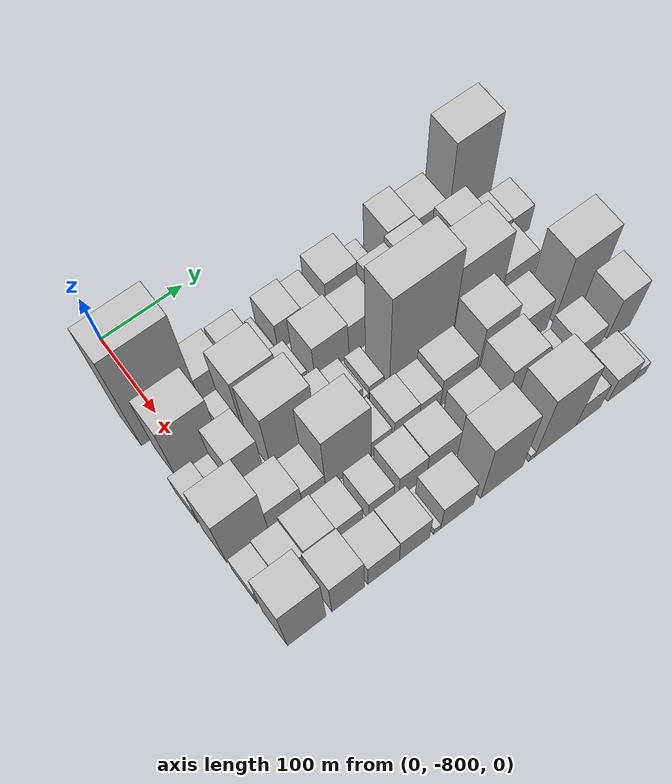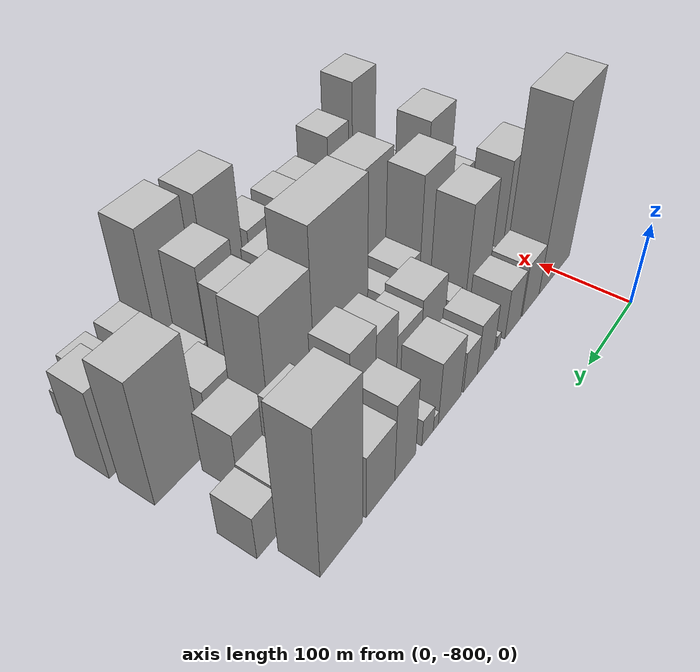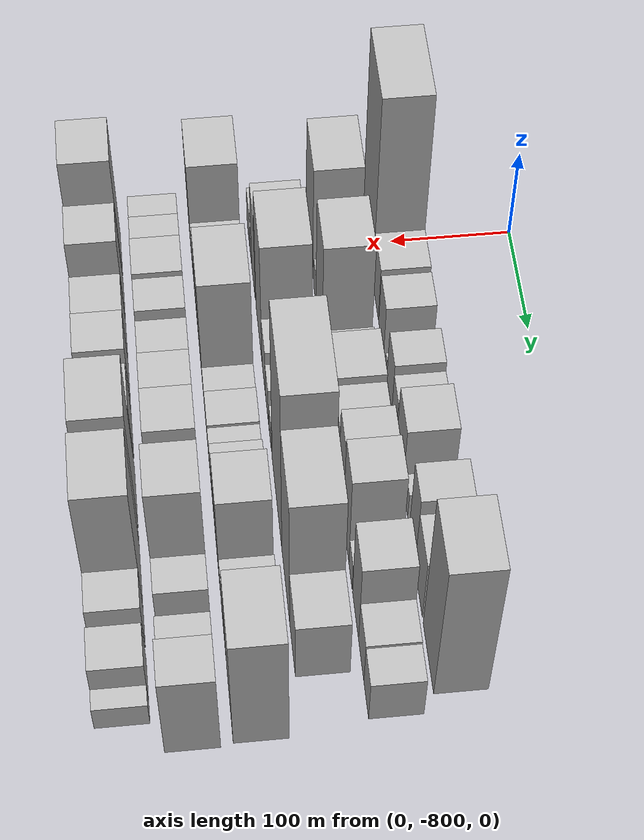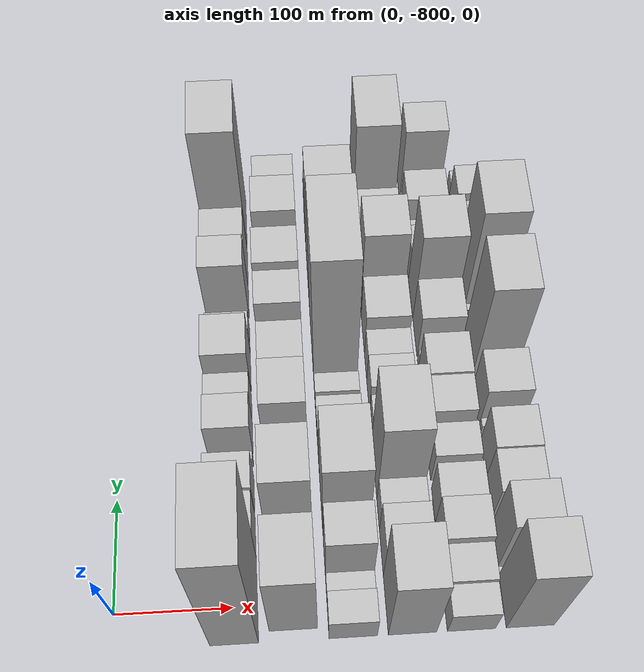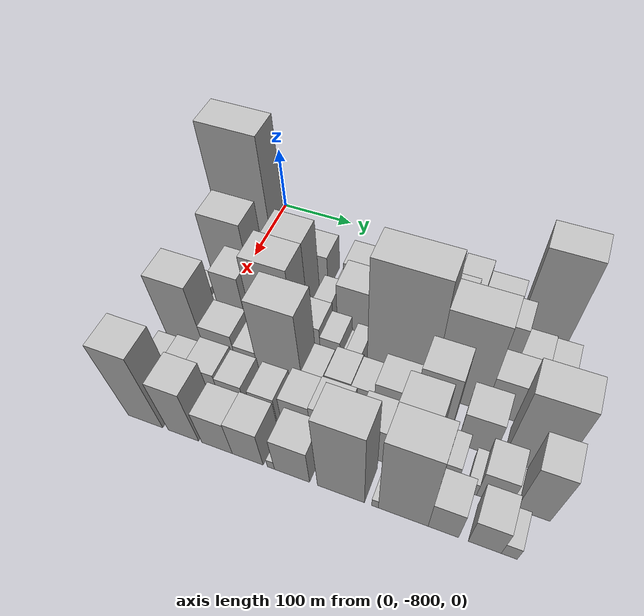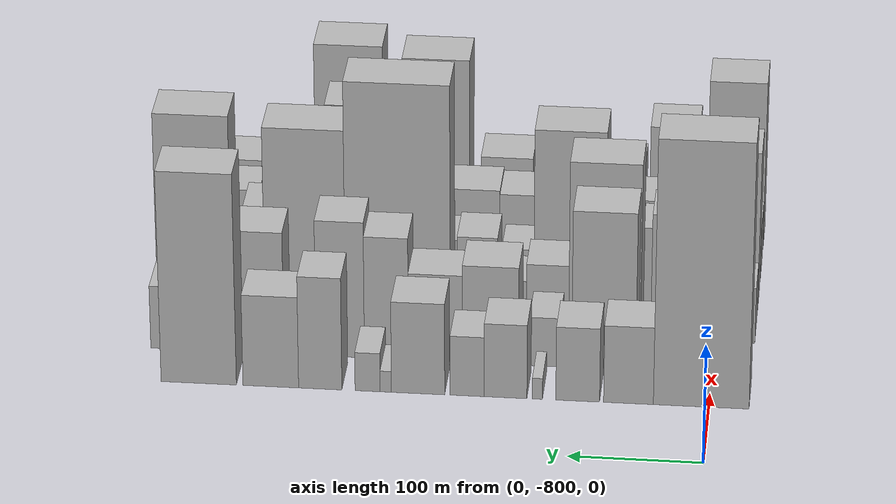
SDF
<sdf version="1.6">
 <world name="default">
  <model name="building_1">
   <static>1</static>
   <pose>100.0000 -794.2020 0 0.000000 0.000000 0.000000</pose>
   <link name="link">
    <pose>0 0 112.50 0 0 0</pose>
    <collision name="collision"><geometry><box><size>40.0000 71.5960 225.0000</size></box></geometry></collision>
    <visual name="visual">
     <cast_shadows>0</cast_shadows>
     <geometry><box><size>40.0000 71.5960 225.0000</size></box></geometry>
     <material>
      <script>
       <uri>model://HANNAS_wall/materials/scripts</uri>
       <uri>model://HANNAS_wall/materials/textures</uri>
       <name>vrc/HANNAS_wall</name>
      </script>
     </material>
    </visual>
   </link>
  </model>
  <model name="building_2">
   <static>1</static>
   <pose>100.0000 -739.7507 0 0.000000 0.000000 0.000000</pose>
   <link name="link">
    <pose>0 0 33.00 0 0 0</pose>
    <collision name="collision"><geometry><box><size>40.0000 37.3066 66.0000</size></box></geometry></collision>
    <visual name="visual">
     <cast_shadows>0</cast_shadows>
     <geometry><box><size>40.0000 37.3066 66.0000</size></box></geometry>
     <material>
      <script>
       <uri>model://HANNAS_wall/materials/scripts</uri>
       <uri>model://HANNAS_wall/materials/textures</uri>
       <name>vrc/HANNAS_wall</name>
      </script>
     </material>
    </visual>
   </link>
  </model>
  <model name="building_3">
   <static>1</static>
   <pose>100.0000 -701.6591 0 0.000000 0.000000 0.000000</pose>
   <link name="link">
    <pose>0 0 31.50 0 0 0</pose>
    <collision name="collision"><geometry><box><size>40.0000 32.8764 63.0000</size></box></geometry></collision>
    <visual name="visual">
     <cast_shadows>0</cast_shadows>
     <geometry><box><size>40.0000 32.8764 63.0000</size></box></geometry>
     <material>
      <script>
       <uri>model://HANNAS_wall/materials/scripts</uri>
       <uri>model://HANNAS_wall/materials/textures</uri>
       <name>vrc/HANNAS_wall</name>
      </script>
     </material>
    </visual>
   </link>
  </model>
  <model name="building_4">
   <static>1</static>
   <pose>100.0000 -671.3592 0 0.000000 0.000000 0.000000</pose>
   <link name="link">
    <pose>0 0 9.00 0 0 0</pose>
    <collision name="collision"><geometry><box><size>40.0000 7.7235 18.0000</size></box></geometry></collision>
    <visual name="visual">
     <cast_shadows>0</cast_shadows>
     <geometry><box><size>40.0000 7.7235 18.0000</size></box></geometry>
     <material>
      <script>
       <uri>model://HANNAS_wall/materials/scripts</uri>
       <uri>model://HANNAS_wall/materials/textures</uri>
       <name>vrc/HANNAS_wall</name>
      </script>
     </material>
    </visual>
   </link>
  </model>
  <model name="building_5">
   <static>1</static>
   <pose>100.0000 -647.3907 0 0.000000 0.000000 0.000000</pose>
   <link name="link">
    <pose>0 0 31.50 0 0 0</pose>
    <collision name="collision"><geometry><box><size>40.0000 32.2135 63.0000</size></box></geometry></collision>
    <visual name="visual">
     <cast_shadows>0</cast_shadows>
     <geometry><box><size>40.0000 32.2135 63.0000</size></box></geometry>
     <material>
      <script>
       <uri>model://HANNAS_wall/materials/scripts</uri>
       <uri>model://HANNAS_wall/materials/textures</uri>
       <name>vrc/HANNAS_wall</name>
      </script>
     </material>
    </visual>
   </link>
  </model>
  <model name="building_6">
   <static>1</static>
   <pose>100.0000 -618.4481 0 0.000000 0.000000 0.000000</pose>
   <link name="link">
    <pose>0 0 25.50 0 0 0</pose>
    <collision name="collision"><geometry><box><size>40.0000 25.6717 51.0000</size></box></geometry></collision>
    <visual name="visual">
     <cast_shadows>0</cast_shadows>
     <geometry><box><size>40.0000 25.6717 51.0000</size></box></geometry>
     <material>
      <script>
       <uri>model://HANNAS_wall/materials/scripts</uri>
       <uri>model://HANNAS_wall/materials/textures</uri>
       <name>vrc/HANNAS_wall</name>
      </script>
     </material>
    </visual>
   </link>
  </model>
  <model name="building_7">
   <static>1</static>
   <pose>100.0000 -581.4891 0 0.000000 0.000000 0.000000</pose>
   <link name="link">
    <pose>0 0 39.00 0 0 0</pose>
    <collision name="collision"><geometry><box><size>40.0000 40.2463 78.0000</size></box></geometry></collision>
    <visual name="visual">
     <cast_shadows>0</cast_shadows>
     <geometry><box><size>40.0000 40.2463 78.0000</size></box></geometry>
     <material>
      <script>
       <uri>model://HANNAS_wall/materials/scripts</uri>
       <uri>model://HANNAS_wall/materials/textures</uri>
       <name>vrc/HANNAS_wall</name>
      </script>
     </material>
    </visual>
   </link>
  </model>
  <model name="building_8">
   <static>1</static>
   <pose>100.0000 -557.1574 0 0.000000 0.000000 0.000000</pose>
   <link name="link">
    <pose>0 0 9.00 0 0 0</pose>
    <collision name="collision"><geometry><box><size>40.0000 8.4170 18.0000</size></box></geometry></collision>
    <visual name="visual">
     <cast_shadows>0</cast_shadows>
     <geometry><box><size>40.0000 8.4170 18.0000</size></box></geometry>
     <material>
      <script>
       <uri>model://HANNAS_wall/materials/scripts</uri>
       <uri>model://HANNAS_wall/materials/textures</uri>
       <name>vrc/HANNAS_wall</name>
      </script>
     </material>
    </visual>
   </link>
  </model>
  <model name="building_9">
   <static>1</static>
   <pose>100.0000 -543.4780 0 0.000000 0.000000 0.000000</pose>
   <link name="link">
    <pose>0 0 16.50 0 0 0</pose>
    <collision name="collision"><geometry><box><size>40.0000 18.9418 33.0000</size></box></geometry></collision>
    <visual name="visual">
     <cast_shadows>0</cast_shadows>
     <geometry><box><size>40.0000 18.9418 33.0000</size></box></geometry>
     <material>
      <script>
       <uri>model://HANNAS_wall/materials/scripts</uri>
       <uri>model://HANNAS_wall/materials/textures</uri>
       <name>vrc/HANNAS_wall</name>
      </script>
     </material>
    </visual>
   </link>
  </model>
  <model name="building_10">
   <static>1</static>
   <pose>100.0000 -507.6493 0 0.000000 0.000000 0.000000</pose>
   <link name="link">
    <pose>0 0 48.00 0 0 0</pose>
    <collision name="collision"><geometry><box><size>40.0000 32.7156 96.0000</size></box></geometry></collision>
    <visual name="visual">
     <cast_shadows>0</cast_shadows>
     <geometry><box><size>40.0000 32.7156 96.0000</size></box></geometry>
     <material>
      <script>
       <uri>model://HANNAS_wall/materials/scripts</uri>
       <uri>model://HANNAS_wall/materials/textures</uri>
       <name>vrc/HANNAS_wall</name>
      </script>
     </material>
    </visual>
   </link>
  </model>
  <model name="building_11">
   <static>1</static>
   <pose>100.0000 -470.2240 0 0.000000 0.000000 0.000000</pose>
   <link name="link">
    <pose>0 0 39.00 0 0 0</pose>
    <collision name="collision"><geometry><box><size>40.0000 42.1351 78.0000</size></box></geometry></collision>
    <visual name="visual">
     <cast_shadows>0</cast_shadows>
     <geometry><box><size>40.0000 42.1351 78.0000</size></box></geometry>
     <material>
      <script>
       <uri>model://HANNAS_wall/materials/scripts</uri>
       <uri>model://HANNAS_wall/materials/textures</uri>
       <name>vrc/HANNAS_wall</name>
      </script>
     </material>
    </visual>
   </link>
  </model>
  <model name="building_12">
   <static>1</static>
   <pose>100.0000 -415.5704 0 0.000000 0.000000 0.000000</pose>
   <link name="link">
    <pose>0 0 90.00 0 0 0</pose>
    <collision name="collision"><geometry><box><size>40.0000 57.1721 180.0000</size></box></geometry></collision>
    <visual name="visual">
     <cast_shadows>0</cast_shadows>
     <geometry><box><size>40.0000 57.1721 180.0000</size></box></geometry>
     <material>
      <script>
       <uri>model://HANNAS_wall/materials/scripts</uri>
       <uri>model://HANNAS_wall/materials/textures</uri>
       <name>vrc/HANNAS_wall</name>
      </script>
     </material>
    </visual>
   </link>
  </model>
  <model name="building_49">
   <static>1</static>
   <pose>149.0000 -794.2120 0 0.000000 0.000000 0.000000</pose>
   <link name="link">
    <pose>0 0 69.00 0 0 0</pose>
    <collision name="collision"><geometry><box><size>40.0000 53.5760 138.0000</size></box></geometry></collision>
    <visual name="visual">
     <cast_shadows>0</cast_shadows>
     <geometry><box><size>40.0000 53.5760 138.0000</size></box></geometry>
     <material>
      <script>
       <uri>model://HANNAS_wall/materials/scripts</uri>
       <uri>model://HANNAS_wall/materials/textures</uri>
       <name>vrc/HANNAS_wall</name>
      </script>
     </material>
    </visual>
   </link>
  </model>
  <model name="building_50">
   <static>1</static>
   <pose>149.0000 -751.2019 0 0.000000 0.000000 0.000000</pose>
   <link name="link">
    <pose>0 0 18.00 0 0 0</pose>
    <collision name="collision"><geometry><box><size>40.0000 18.4443 36.0000</size></box></geometry></collision>
    <visual name="visual">
     <cast_shadows>0</cast_shadows>
     <geometry><box><size>40.0000 18.4443 36.0000</size></box></geometry>
     <material>
      <script>
       <uri>model://HANNAS_wall/materials/scripts</uri>
       <uri>model://HANNAS_wall/materials/textures</uri>
       <name>vrc/HANNAS_wall</name>
      </script>
     </material>
    </visual>
   </link>
  </model>
  <model name="building_51">
   <static>1</static>
   <pose>149.0000 -717.7281 0 0.000000 0.000000 0.000000</pose>
   <link name="link">
    <pose>0 0 67.50 0 0 0</pose>
    <collision name="collision"><geometry><box><size>40.0000 48.5032 135.0000</size></box></geometry></collision>
    <visual name="visual">
     <cast_shadows>0</cast_shadows>
     <geometry><box><size>40.0000 48.5032 135.0000</size></box></geometry>
     <material>
      <script>
       <uri>model://HANNAS_wall/materials/scripts</uri>
       <uri>model://HANNAS_wall/materials/textures</uri>
       <name>vrc/HANNAS_wall</name>
      </script>
     </material>
    </visual>
   </link>
  </model>
  <model name="building_52">
   <static>1</static>
   <pose>149.0000 -672.8310 0 0.000000 0.000000 0.000000</pose>
   <link name="link">
    <pose>0 0 21.00 0 0 0</pose>
    <collision name="collision"><geometry><box><size>40.0000 23.2910 42.0000</size></box></geometry></collision>
    <visual name="visual">
     <cast_shadows>0</cast_shadows>
     <geometry><box><size>40.0000 23.2910 42.0000</size></box></geometry>
     <material>
      <script>
       <uri>model://HANNAS_wall/materials/scripts</uri>
       <uri>model://HANNAS_wall/materials/textures</uri>
       <name>vrc/HANNAS_wall</name>
      </script>
     </material>
    </visual>
   </link>
  </model>
  <model name="building_53">
   <static>1</static>
   <pose>149.0000 -631.7565 0 0.000000 0.000000 0.000000</pose>
   <link name="link">
    <pose>0 0 42.00 0 0 0</pose>
    <collision name="collision"><geometry><box><size>40.0000 42.8581 84.0000</size></box></geometry></collision>
    <visual name="visual">
     <cast_shadows>0</cast_shadows>
     <geometry><box><size>40.0000 42.8581 84.0000</size></box></geometry>
     <material>
      <script>
       <uri>model://HANNAS_wall/materials/scripts</uri>
       <uri>model://HANNAS_wall/materials/textures</uri>
       <name>vrc/HANNAS_wall</name>
      </script>
     </material>
    </visual>
   </link>
  </model>
  <model name="building_54">
   <static>1</static>
   <pose>149.0000 -589.7755 0 0.000000 0.000000 0.000000</pose>
   <link name="link">
    <pose>0 0 37.50 0 0 0</pose>
    <collision name="collision"><geometry><box><size>40.0000 41.1040 75.0000</size></box></geometry></collision>
    <visual name="visual">
     <cast_shadows>0</cast_shadows>
     <geometry><box><size>40.0000 41.1040 75.0000</size></box></geometry>
     <material>
      <script>
       <uri>model://HANNAS_wall/materials/scripts</uri>
       <uri>model://HANNAS_wall/materials/textures</uri>
       <name>vrc/HANNAS_wall</name>
      </script>
     </material>
    </visual>
   </link>
  </model>
  <model name="building_55">
   <static>1</static>
   <pose>149.0000 -552.4920 0 0.000000 0.000000 0.000000</pose>
   <link name="link">
    <pose>0 0 52.50 0 0 0</pose>
    <collision name="collision"><geometry><box><size>40.0000 33.4629 105.0000</size></box></geometry></collision>
    <visual name="visual">
     <cast_shadows>0</cast_shadows>
     <geometry><box><size>40.0000 33.4629 105.0000</size></box></geometry>
     <material>
      <script>
       <uri>model://HANNAS_wall/materials/scripts</uri>
       <uri>model://HANNAS_wall/materials/textures</uri>
       <name>vrc/HANNAS_wall</name>
      </script>
     </material>
    </visual>
   </link>
  </model>
  <model name="building_56">
   <static>1</static>
   <pose>149.0000 -517.2553 0 0.000000 0.000000 0.000000</pose>
   <link name="link">
    <pose>0 0 58.50 0 0 0</pose>
    <collision name="collision"><geometry><box><size>40.0000 37.0105 117.0000</size></box></geometry></collision>
    <visual name="visual">
     <cast_shadows>0</cast_shadows>
     <geometry><box><size>40.0000 37.0105 117.0000</size></box></geometry>
     <material>
      <script>
       <uri>model://HANNAS_wall/materials/scripts</uri>
       <uri>model://HANNAS_wall/materials/textures</uri>
       <name>vrc/HANNAS_wall</name>
      </script>
     </material>
    </visual>
   </link>
  </model>
  <model name="building_57">
   <static>1</static>
   <pose>149.0000 -487.9919 0 0.000000 0.000000 0.000000</pose>
   <link name="link">
    <pose>0 0 18.00 0 0 0</pose>
    <collision name="collision"><geometry><box><size>40.0000 21.5161 36.0000</size></box></geometry></collision>
    <visual name="visual">
     <cast_shadows>0</cast_shadows>
     <geometry><box><size>40.0000 21.5161 36.0000</size></box></geometry>
     <material>
      <script>
       <uri>model://HANNAS_wall/materials/scripts</uri>
       <uri>model://HANNAS_wall/materials/textures</uri>
       <name>vrc/HANNAS_wall</name>
      </script>
     </material>
    </visual>
   </link>
  </model>
  <model name="building_58">
   <static>1</static>
   <pose>149.0000 -454.6169 0 0.000000 0.000000 0.000000</pose>
   <link name="link">
    <pose>0 0 52.50 0 0 0</pose>
    <collision name="collision"><geometry><box><size>40.0000 39.2341 105.0000</size></box></geometry></collision>
    <visual name="visual">
     <cast_shadows>0</cast_shadows>
     <geometry><box><size>40.0000 39.2341 105.0000</size></box></geometry>
     <material>
      <script>
       <uri>model://HANNAS_wall/materials/scripts</uri>
       <uri>model://HANNAS_wall/materials/textures</uri>
       <name>vrc/HANNAS_wall</name>
      </script>
     </material>
    </visual>
   </link>
  </model>
  <model name="building_59">
   <static>1</static>
   <pose>149.0000 -418.0743 0 0.000000 0.000000 0.000000</pose>
   <link name="link">
    <pose>0 0 28.50 0 0 0</pose>
    <collision name="collision"><geometry><box><size>40.0000 33.8511 57.0000</size></box></geometry></collision>
    <visual name="visual">
     <cast_shadows>0</cast_shadows>
     <geometry><box><size>40.0000 33.8511 57.0000</size></box></geometry>
     <material>
      <script>
       <uri>model://HANNAS_wall/materials/scripts</uri>
       <uri>model://HANNAS_wall/materials/textures</uri>
       <name>vrc/HANNAS_wall</name>
      </script>
     </material>
    </visual>
   </link>
  </model>
  <model name="building_60">
   <static>1</static>
   <pose>149.0000 -386.6457 0 0.000000 0.000000 0.000000</pose>
   <link name="link">
    <pose>0 0 27.00 0 0 0</pose>
    <collision name="collision"><geometry><box><size>40.0000 29.0060 54.0000</size></box></geometry></collision>
    <visual name="visual">
     <cast_shadows>0</cast_shadows>
     <geometry><box><size>40.0000 29.0060 54.0000</size></box></geometry>
     <material>
      <script>
       <uri>model://HANNAS_wall/materials/scripts</uri>
       <uri>model://HANNAS_wall/materials/textures</uri>
       <name>vrc/HANNAS_wall</name>
      </script>
     </material>
    </visual>
   </link>
  </model>
  <model name="building_103">
   <static>1</static>
   <pose>198.0000 -816.5525 0 0.000000 0.000000 0.000000</pose>
   <link name="link">
    <pose>0 0 24.00 0 0 0</pose>
    <collision name="collision"><geometry><box><size>40.0000 26.8951 48.0000</size></box></geometry></collision>
    <visual name="visual">
     <cast_shadows>0</cast_shadows>
     <geometry><box><size>40.0000 26.8951 48.0000</size></box></geometry>
     <material>
      <script>
       <uri>model://HANNAS_wall/materials/scripts</uri>
       <uri>model://HANNAS_wall/materials/textures</uri>
       <name>vrc/HANNAS_wall</name>
      </script>
     </material>
    </visual>
   </link>
  </model>
  <model name="building_104">
   <static>1</static>
   <pose>198.0000 -794.0430 0 0.000000 0.000000 0.000000</pose>
   <link name="link">
    <pose>0 0 18.00 0 0 0</pose>
    <collision name="collision"><geometry><box><size>40.0000 18.1237 36.0000</size></box></geometry></collision>
    <visual name="visual">
     <cast_shadows>0</cast_shadows>
     <geometry><box><size>40.0000 18.1237 36.0000</size></box></geometry>
     <material>
      <script>
       <uri>model://HANNAS_wall/materials/scripts</uri>
       <uri>model://HANNAS_wall/materials/textures</uri>
       <name>vrc/HANNAS_wall</name>
      </script>
     </material>
    </visual>
   </link>
  </model>
  <model name="building_105">
   <static>1</static>
   <pose>198.0000 -767.6848 0 0.000000 0.000000 0.000000</pose>
   <link name="link">
    <pose>0 0 54.00 0 0 0</pose>
    <collision name="collision"><geometry><box><size>40.0000 34.5927 108.0000</size></box></geometry></collision>
    <visual name="visual">
     <cast_shadows>0</cast_shadows>
     <geometry><box><size>40.0000 34.5927 108.0000</size></box></geometry>
     <material>
      <script>
       <uri>model://HANNAS_wall/materials/scripts</uri>
       <uri>model://HANNAS_wall/materials/textures</uri>
       <name>vrc/HANNAS_wall</name>
      </script>
     </material>
    </visual>
   </link>
  </model>
  <model name="building_106">
   <static>1</static>
   <pose>198.0000 -714.9640 0 0.000000 0.000000 0.000000</pose>
   <link name="link">
    <pose>0 0 75.00 0 0 0</pose>
    <collision name="collision"><geometry><box><size>40.0000 54.8491 150.0000</size></box></geometry></collision>
    <visual name="visual">
     <cast_shadows>0</cast_shadows>
     <geometry><box><size>40.0000 54.8491 150.0000</size></box></geometry>
     <material>
      <script>
       <uri>model://HANNAS_wall/materials/scripts</uri>
       <uri>model://HANNAS_wall/materials/textures</uri>
       <name>vrc/HANNAS_wall</name>
      </script>
     </material>
    </visual>
   </link>
  </model>
  <model name="building_107">
   <static>1</static>
   <pose>198.0000 -671.2611 0 0.000000 0.000000 0.000000</pose>
   <link name="link">
    <pose>0 0 30.00 0 0 0</pose>
    <collision name="collision"><geometry><box><size>40.0000 32.5567 60.0000</size></box></geometry></collision>
    <visual name="visual">
     <cast_shadows>0</cast_shadows>
     <geometry><box><size>40.0000 32.5567 60.0000</size></box></geometry>
     <material>
      <script>
       <uri>model://HANNAS_wall/materials/scripts</uri>
       <uri>model://HANNAS_wall/materials/textures</uri>
       <name>vrc/HANNAS_wall</name>
      </script>
     </material>
    </visual>
   </link>
  </model>
  <model name="building_108">
   <static>1</static>
   <pose>198.0000 -642.4145 0 0.000000 0.000000 0.000000</pose>
   <link name="link">
    <pose>0 0 22.50 0 0 0</pose>
    <collision name="collision"><geometry><box><size>40.0000 25.1365 45.0000</size></box></geometry></collision>
    <visual name="visual">
     <cast_shadows>0</cast_shadows>
     <geometry><box><size>40.0000 25.1365 45.0000</size></box></geometry>
     <material>
      <script>
       <uri>model://HANNAS_wall/materials/scripts</uri>
       <uri>model://HANNAS_wall/materials/textures</uri>
       <name>vrc/HANNAS_wall</name>
      </script>
     </material>
    </visual>
   </link>
  </model>
  <model name="building_109">
   <static>1</static>
   <pose>198.0000 -626.1561 0 0.000000 0.000000 0.000000</pose>
   <link name="link">
    <pose>0 0 9.00 0 0 0</pose>
    <collision name="collision"><geometry><box><size>40.0000 7.3804 18.0000</size></box></geometry></collision>
    <visual name="visual">
     <cast_shadows>0</cast_shadows>
     <geometry><box><size>40.0000 7.3804 18.0000</size></box></geometry>
     <material>
      <script>
       <uri>model://HANNAS_wall/materials/scripts</uri>
       <uri>model://HANNAS_wall/materials/textures</uri>
       <name>vrc/HANNAS_wall</name>
      </script>
     </material>
    </visual>
   </link>
  </model>
  <model name="building_110">
   <static>1</static>
   <pose>198.0000 -612.9217 0 0.000000 0.000000 0.000000</pose>
   <link name="link">
    <pose>0 0 18.00 0 0 0</pose>
    <collision name="collision"><geometry><box><size>40.0000 19.0884 36.0000</size></box></geometry></collision>
    <visual name="visual">
     <cast_shadows>0</cast_shadows>
     <geometry><box><size>40.0000 19.0884 36.0000</size></box></geometry>
     <material>
      <script>
       <uri>model://HANNAS_wall/materials/scripts</uri>
       <uri>model://HANNAS_wall/materials/textures</uri>
       <name>vrc/HANNAS_wall</name>
      </script>
     </material>
    </visual>
   </link>
  </model>
  <model name="building_111">
   <static>1</static>
   <pose>198.0000 -556.1081 0 0.000000 0.000000 0.000000</pose>
   <link name="link">
    <pose>0 0 105.00 0 0 0</pose>
    <collision name="collision"><geometry><box><size>40.0000 80.5388 210.0000</size></box></geometry></collision>
    <visual name="visual">
     <cast_shadows>0</cast_shadows>
     <geometry><box><size>40.0000 80.5388 210.0000</size></box></geometry>
     <material>
      <script>
       <uri>model://HANNAS_wall/materials/scripts</uri>
       <uri>model://HANNAS_wall/materials/textures</uri>
       <name>vrc/HANNAS_wall</name>
      </script>
     </material>
    </visual>
   </link>
  </model>
  <model name="building_112">
   <static>1</static>
   <pose>198.0000 -484.8271 0 0.000000 0.000000 0.000000</pose>
   <link name="link">
    <pose>0 0 84.00 0 0 0</pose>
    <collision name="collision"><geometry><box><size>40.0000 62.0232 168.0000</size></box></geometry></collision>
    <visual name="visual">
     <cast_shadows>0</cast_shadows>
     <geometry><box><size>40.0000 62.0232 168.0000</size></box></geometry>
     <material>
      <script>
       <uri>model://HANNAS_wall/materials/scripts</uri>
       <uri>model://HANNAS_wall/materials/textures</uri>
       <name>vrc/HANNAS_wall</name>
      </script>
     </material>
    </visual>
   </link>
  </model>
  <model name="building_113">
   <static>1</static>
   <pose>198.0000 -431.9810 0 0.000000 0.000000 0.000000</pose>
   <link name="link">
    <pose>0 0 37.50 0 0 0</pose>
    <collision name="collision"><geometry><box><size>40.0000 43.6690 75.0000</size></box></geometry></collision>
    <visual name="visual">
     <cast_shadows>0</cast_shadows>
     <geometry><box><size>40.0000 43.6690 75.0000</size></box></geometry>
     <material>
      <script>
       <uri>model://HANNAS_wall/materials/scripts</uri>
       <uri>model://HANNAS_wall/materials/textures</uri>
       <name>vrc/HANNAS_wall</name>
      </script>
     </material>
    </visual>
   </link>
  </model>
  <model name="building_152">
   <static>1</static>
   <pose>247.0000 -805.3333 0 0.000000 0.000000 0.000000</pose>
   <link name="link">
    <pose>0 0 69.00 0 0 0</pose>
    <collision name="collision"><geometry><box><size>40.0000 49.3334 138.0000</size></box></geometry></collision>
    <visual name="visual">
     <cast_shadows>0</cast_shadows>
     <geometry><box><size>40.0000 49.3334 138.0000</size></box></geometry>
     <material>
      <script>
       <uri>model://HANNAS_wall/materials/scripts</uri>
       <uri>model://HANNAS_wall/materials/textures</uri>
       <name>vrc/HANNAS_wall</name>
      </script>
     </material>
    </visual>
   </link>
  </model>
  <model name="building_153">
   <static>1</static>
   <pose>247.0000 -760.4722 0 0.000000 0.000000 0.000000</pose>
   <link name="link">
    <pose>0 0 34.50 0 0 0</pose>
    <collision name="collision"><geometry><box><size>40.0000 40.3887 69.0000</size></box></geometry></collision>
    <visual name="visual">
     <cast_shadows>0</cast_shadows>
     <geometry><box><size>40.0000 40.3887 69.0000</size></box></geometry>
     <material>
      <script>
       <uri>model://HANNAS_wall/materials/scripts</uri>
       <uri>model://HANNAS_wall/materials/textures</uri>
       <name>vrc/HANNAS_wall</name>
      </script>
     </material>
    </visual>
   </link>
  </model>
  <model name="building_154">
   <static>1</static>
   <pose>247.0000 -726.3189 0 0.000000 0.000000 0.000000</pose>
   <link name="link">
    <pose>0 0 25.50 0 0 0</pose>
    <collision name="collision"><geometry><box><size>40.0000 27.9179 51.0000</size></box></geometry></collision>
    <visual name="visual">
     <cast_shadows>0</cast_shadows>
     <geometry><box><size>40.0000 27.9179 51.0000</size></box></geometry>
     <material>
      <script>
       <uri>model://HANNAS_wall/materials/scripts</uri>
       <uri>model://HANNAS_wall/materials/textures</uri>
       <name>vrc/HANNAS_wall</name>
      </script>
     </material>
    </visual>
   </link>
  </model>
  <model name="building_155">
   <static>1</static>
   <pose>247.0000 -684.6384 0 0.000000 0.000000 0.000000</pose>
   <link name="link">
    <pose>0 0 75.00 0 0 0</pose>
    <collision name="collision"><geometry><box><size>40.0000 55.4429 150.0000</size></box></geometry></collision>
    <visual name="visual">
     <cast_shadows>0</cast_shadows>
     <geometry><box><size>40.0000 55.4429 150.0000</size></box></geometry>
     <material>
      <script>
       <uri>model://HANNAS_wall/materials/scripts</uri>
       <uri>model://HANNAS_wall/materials/textures</uri>
       <name>vrc/HANNAS_wall</name>
      </script>
     </material>
    </visual>
   </link>
  </model>
  <model name="building_156">
   <static>1</static>
   <pose>247.0000 -644.3229 0 0.000000 0.000000 0.000000</pose>
   <link name="link">
    <pose>0 0 22.50 0 0 0</pose>
    <collision name="collision"><geometry><box><size>40.0000 25.1881 45.0000</size></box></geometry></collision>
    <visual name="visual">
     <cast_shadows>0</cast_shadows>
     <geometry><box><size>40.0000 25.1881 45.0000</size></box></geometry>
     <material>
      <script>
       <uri>model://HANNAS_wall/materials/scripts</uri>
       <uri>model://HANNAS_wall/materials/textures</uri>
       <name>vrc/HANNAS_wall</name>
      </script>
     </material>
    </visual>
   </link>
  </model>
  <model name="building_157">
   <static>1</static>
   <pose>247.0000 -613.0120 0 0.000000 0.000000 0.000000</pose>
   <link name="link">
    <pose>0 0 27.00 0 0 0</pose>
    <collision name="collision"><geometry><box><size>40.0000 31.4338 54.0000</size></box></geometry></collision>
    <visual name="visual">
     <cast_shadows>0</cast_shadows>
     <geometry><box><size>40.0000 31.4338 54.0000</size></box></geometry>
     <material>
      <script>
       <uri>model://HANNAS_wall/materials/scripts</uri>
       <uri>model://HANNAS_wall/materials/textures</uri>
       <name>vrc/HANNAS_wall</name>
      </script>
     </material>
    </visual>
   </link>
  </model>
  <model name="building_158">
   <static>1</static>
   <pose>247.0000 -583.7332 0 0.000000 0.000000 0.000000</pose>
   <link name="link">
    <pose>0 0 25.50 0 0 0</pose>
    <collision name="collision"><geometry><box><size>40.0000 27.1238 51.0000</size></box></geometry></collision>
    <visual name="visual">
     <cast_shadows>0</cast_shadows>
     <geometry><box><size>40.0000 27.1238 51.0000</size></box></geometry>
     <material>
      <script>
       <uri>model://HANNAS_wall/materials/scripts</uri>
       <uri>model://HANNAS_wall/materials/textures</uri>
       <name>vrc/HANNAS_wall</name>
      </script>
     </material>
    </visual>
   </link>
  </model>
  <model name="building_159">
   <static>1</static>
   <pose>247.0000 -548.7739 0 0.000000 0.000000 0.000000</pose>
   <link name="link">
    <pose>0 0 36.00 0 0 0</pose>
    <collision name="collision"><geometry><box><size>40.0000 42.7948 72.0000</size></box></geometry></collision>
    <visual name="visual">
     <cast_shadows>0</cast_shadows>
     <geometry><box><size>40.0000 42.7948 72.0000</size></box></geometry>
     <material>
      <script>
       <uri>model://HANNAS_wall/materials/scripts</uri>
       <uri>model://HANNAS_wall/materials/textures</uri>
       <name>vrc/HANNAS_wall</name>
      </script>
     </material>
    </visual>
   </link>
  </model>
  <model name="building_160">
   <static>1</static>
   <pose>247.0000 -503.4297 0 0.000000 0.000000 0.000000</pose>
   <link name="link">
    <pose>0 0 66.00 0 0 0</pose>
    <collision name="collision"><geometry><box><size>40.0000 41.8935 132.0000</size></box></geometry></collision>
    <visual name="visual">
     <cast_shadows>0</cast_shadows>
     <geometry><box><size>40.0000 41.8935 132.0000</size></box></geometry>
     <material>
      <script>
       <uri>model://HANNAS_wall/materials/scripts</uri>
       <uri>model://HANNAS_wall/materials/textures</uri>
       <name>vrc/HANNAS_wall</name>
      </script>
     </material>
    </visual>
   </link>
  </model>
  <model name="building_161">
   <static>1</static>
   <pose>247.0000 -451.8655 0 0.000000 0.000000 0.000000</pose>
   <link name="link">
    <pose>0 0 36.00 0 0 0</pose>
    <collision name="collision"><geometry><box><size>40.0000 41.2349 72.0000</size></box></geometry></collision>
    <visual name="visual">
     <cast_shadows>0</cast_shadows>
     <geometry><box><size>40.0000 41.2349 72.0000</size></box></geometry>
     <material>
      <script>
       <uri>model://HANNAS_wall/materials/scripts</uri>
       <uri>model://HANNAS_wall/materials/textures</uri>
       <name>vrc/HANNAS_wall</name>
      </script>
     </material>
    </visual>
   </link>
  </model>
  <model name="building_162">
   <static>1</static>
   <pose>247.0000 -392.0747 0 0.000000 0.000000 0.000000</pose>
   <link name="link">
    <pose>0 0 75.00 0 0 0</pose>
    <collision name="collision"><geometry><box><size>40.0000 58.3466 150.0000</size></box></geometry></collision>
    <visual name="visual">
     <cast_shadows>0</cast_shadows>
     <geometry><box><size>40.0000 58.3466 150.0000</size></box></geometry>
     <material>
      <script>
       <uri>model://HANNAS_wall/materials/scripts</uri>
       <uri>model://HANNAS_wall/materials/textures</uri>
       <name>vrc/HANNAS_wall</name>
      </script>
     </material>
    </visual>
   </link>
  </model>
  <model name="building_193">
   <static>1</static>
   <pose>296.0000 -816.8785 0 0.000000 0.000000 0.000000</pose>
   <link name="link">
    <pose>0 0 24.00 0 0 0</pose>
    <collision name="collision"><geometry><box><size>40.0000 26.2429 48.0000</size></box></geometry></collision>
    <visual name="visual">
     <cast_shadows>0</cast_shadows>
     <geometry><box><size>40.0000 26.2429 48.0000</size></box></geometry>
     <material>
      <script>
       <uri>model://HANNAS_wall/materials/scripts</uri>
       <uri>model://HANNAS_wall/materials/textures</uri>
       <name>vrc/HANNAS_wall</name>
      </script>
     </material>
    </visual>
   </link>
  </model>
  <model name="building_194">
   <static>1</static>
   <pose>296.0000 -787.9811 0 0.000000 0.000000 0.000000</pose>
   <link name="link">
    <pose>0 0 27.00 0 0 0</pose>
    <collision name="collision"><geometry><box><size>40.0000 31.5519 54.0000</size></box></geometry></collision>
    <visual name="visual">
     <cast_shadows>0</cast_shadows>
     <geometry><box><size>40.0000 31.5519 54.0000</size></box></geometry>
     <material>
      <script>
       <uri>model://HANNAS_wall/materials/scripts</uri>
       <uri>model://HANNAS_wall/materials/textures</uri>
       <name>vrc/HANNAS_wall</name>
      </script>
     </material>
    </visual>
   </link>
  </model>
  <model name="building_195">
   <static>1</static>
   <pose>296.0000 -754.2146 0 0.000000 0.000000 0.000000</pose>
   <link name="link">
    <pose>0 0 33.00 0 0 0</pose>
    <collision name="collision"><geometry><box><size>40.0000 35.9811 66.0000</size></box></geometry></collision>
    <visual name="visual">
     <cast_shadows>0</cast_shadows>
     <geometry><box><size>40.0000 35.9811 66.0000</size></box></geometry>
     <material>
      <script>
       <uri>model://HANNAS_wall/materials/scripts</uri>
       <uri>model://HANNAS_wall/materials/textures</uri>
       <name>vrc/HANNAS_wall</name>
      </script>
     </material>
    </visual>
   </link>
  </model>
  <model name="building_196">
   <static>1</static>
   <pose>296.0000 -720.3764 0 0.000000 0.000000 0.000000</pose>
   <link name="link">
    <pose>0 0 30.00 0 0 0</pose>
    <collision name="collision"><geometry><box><size>40.0000 31.6954 60.0000</size></box></geometry></collision>
    <visual name="visual">
     <cast_shadows>0</cast_shadows>
     <geometry><box><size>40.0000 31.6954 60.0000</size></box></geometry>
     <material>
      <script>
       <uri>model://HANNAS_wall/materials/scripts</uri>
       <uri>model://HANNAS_wall/materials/textures</uri>
       <name>vrc/HANNAS_wall</name>
      </script>
     </material>
    </visual>
   </link>
  </model>
  <model name="building_197">
   <static>1</static>
   <pose>296.0000 -682.2606 0 0.000000 0.000000 0.000000</pose>
   <link name="link">
    <pose>0 0 28.50 0 0 0</pose>
    <collision name="collision"><geometry><box><size>40.0000 30.5362 57.0000</size></box></geometry></collision>
    <visual name="visual">
     <cast_shadows>0</cast_shadows>
     <geometry><box><size>40.0000 30.5362 57.0000</size></box></geometry>
     <material>
      <script>
       <uri>model://HANNAS_wall/materials/scripts</uri>
       <uri>model://HANNAS_wall/materials/textures</uri>
       <name>vrc/HANNAS_wall</name>
      </script>
     </material>
    </visual>
   </link>
  </model>
  <model name="building_198">
   <static>1</static>
   <pose>296.0000 -643.6365 0 0.000000 0.000000 0.000000</pose>
   <link name="link">
    <pose>0 0 33.00 0 0 0</pose>
    <collision name="collision"><geometry><box><size>40.0000 34.7121 66.0000</size></box></geometry></collision>
    <visual name="visual">
     <cast_shadows>0</cast_shadows>
     <geometry><box><size>40.0000 34.7121 66.0000</size></box></geometry>
     <material>
      <script>
       <uri>model://HANNAS_wall/materials/scripts</uri>
       <uri>model://HANNAS_wall/materials/textures</uri>
       <name>vrc/HANNAS_wall</name>
      </script>
     </material>
    </visual>
   </link>
  </model>
  <model name="building_199">
   <static>1</static>
   <pose>296.0000 -606.4217 0 0.000000 0.000000 0.000000</pose>
   <link name="link">
    <pose>0 0 34.50 0 0 0</pose>
    <collision name="collision"><geometry><box><size>40.0000 39.7177 69.0000</size></box></geometry></collision>
    <visual name="visual">
     <cast_shadows>0</cast_shadows>
     <geometry><box><size>40.0000 39.7177 69.0000</size></box></geometry>
     <material>
      <script>
       <uri>model://HANNAS_wall/materials/scripts</uri>
       <uri>model://HANNAS_wall/materials/textures</uri>
       <name>vrc/HANNAS_wall</name>
      </script>
     </material>
    </visual>
   </link>
  </model>
  <model name="building_200">
   <static>1</static>
   <pose>296.0000 -582.2152 0 0.000000 0.000000 0.000000</pose>
   <link name="link">
    <pose>0 0 10.50 0 0 0</pose>
    <collision name="collision"><geometry><box><size>40.0000 8.6954 21.0000</size></box></geometry></collision>
    <visual name="visual">
     <cast_shadows>0</cast_shadows>
     <geometry><box><size>40.0000 8.6954 21.0000</size></box></geometry>
     <material>
      <script>
       <uri>model://HANNAS_wall/materials/scripts</uri>
       <uri>model://HANNAS_wall/materials/textures</uri>
       <name>vrc/HANNAS_wall</name>
      </script>
     </material>
    </visual>
   </link>
  </model>
  <model name="building_201">
   <static>1</static>
   <pose>296.0000 -553.5102 0 0.000000 0.000000 0.000000</pose>
   <link name="link">
    <pose>0 0 36.00 0 0 0</pose>
    <collision name="collision"><geometry><box><size>40.0000 40.7145 72.0000</size></box></geometry></collision>
    <visual name="visual">
     <cast_shadows>0</cast_shadows>
     <geometry><box><size>40.0000 40.7145 72.0000</size></box></geometry>
     <material>
      <script>
       <uri>model://HANNAS_wall/materials/scripts</uri>
       <uri>model://HANNAS_wall/materials/textures</uri>
       <name>vrc/HANNAS_wall</name>
      </script>
     </material>
    </visual>
   </link>
  </model>
  <model name="building_202">
   <static>1</static>
   <pose>296.0000 -511.4584 0 0.000000 0.000000 0.000000</pose>
   <link name="link">
    <pose>0 0 69.00 0 0 0</pose>
    <collision name="collision"><geometry><box><size>40.0000 43.3892 138.0000</size></box></geometry></collision>
    <visual name="visual">
     <cast_shadows>0</cast_shadows>
     <geometry><box><size>40.0000 43.3892 138.0000</size></box></geometry>
     <material>
      <script>
       <uri>model://HANNAS_wall/materials/scripts</uri>
       <uri>model://HANNAS_wall/materials/textures</uri>
       <name>vrc/HANNAS_wall</name>
      </script>
     </material>
    </visual>
   </link>
  </model>
  <model name="building_203">
   <static>1</static>
   <pose>296.0000 -475.0262 0 0.000000 0.000000 0.000000</pose>
   <link name="link">
    <pose>0 0 25.50 0 0 0</pose>
    <collision name="collision"><geometry><box><size>40.0000 29.4753 51.0000</size></box></geometry></collision>
    <visual name="visual">
     <cast_shadows>0</cast_shadows>
     <geometry><box><size>40.0000 29.4753 51.0000</size></box></geometry>
     <material>
      <script>
       <uri>model://HANNAS_wall/materials/scripts</uri>
       <uri>model://HANNAS_wall/materials/textures</uri>
       <name>vrc/HANNAS_wall</name>
      </script>
     </material>
    </visual>
   </link>
  </model>
  <model name="building_204">
   <static>1</static>
   <pose>296.0000 -444.1606 0 0.000000 0.000000 0.000000</pose>
   <link name="link">
    <pose>0 0 13.50 0 0 0</pose>
    <collision name="collision"><geometry><box><size>40.0000 12.2558 27.0000</size></box></geometry></collision>
    <visual name="visual">
     <cast_shadows>0</cast_shadows>
     <geometry><box><size>40.0000 12.2558 27.0000</size></box></geometry>
     <material>
      <script>
       <uri>model://HANNAS_wall/materials/scripts</uri>
       <uri>model://HANNAS_wall/materials/textures</uri>
       <name>vrc/HANNAS_wall</name>
      </script>
     </material>
    </visual>
   </link>
  </model>
  <model name="building_205">
   <static>1</static>
   <pose>296.0000 -420.4557 0 0.000000 0.000000 0.000000</pose>
   <link name="link">
    <pose>0 0 30.00 0 0 0</pose>
    <collision name="collision"><geometry><box><size>40.0000 35.1542 60.0000</size></box></geometry></collision>
    <visual name="visual">
     <cast_shadows>0</cast_shadows>
     <geometry><box><size>40.0000 35.1542 60.0000</size></box></geometry>
     <material>
      <script>
       <uri>model://HANNAS_wall/materials/scripts</uri>
       <uri>model://HANNAS_wall/materials/textures</uri>
       <name>vrc/HANNAS_wall</name>
      </script>
     </material>
    </visual>
   </link>
  </model>
  <model name="building_206">
   <static>1</static>
   <pose>296.0000 -399.3960 0 0.000000 0.000000 0.000000</pose>
   <link name="link">
    <pose>0 0 7.50 0 0 0</pose>
    <collision name="collision"><geometry><box><size>40.0000 6.9652 15.0000</size></box></geometry></collision>
    <visual name="visual">
     <cast_shadows>0</cast_shadows>
     <geometry><box><size>40.0000 6.9652 15.0000</size></box></geometry>
     <material>
      <script>
       <uri>model://HANNAS_wall/materials/scripts</uri>
       <uri>model://HANNAS_wall/materials/textures</uri>
       <name>vrc/HANNAS_wall</name>
      </script>
     </material>
    </visual>
   </link>
  </model>
  <model name="building_207">
   <static>1</static>
   <pose>296.0000 -378.2352 0 0.000000 0.000000 0.000000</pose>
   <link name="link">
    <pose>0 0 54.00 0 0 0</pose>
    <collision name="collision"><geometry><box><size>40.0000 35.3563 108.0000</size></box></geometry></collision>
    <visual name="visual">
     <cast_shadows>0</cast_shadows>
     <geometry><box><size>40.0000 35.3563 108.0000</size></box></geometry>
     <material>
      <script>
       <uri>model://HANNAS_wall/materials/scripts</uri>
       <uri>model://HANNAS_wall/materials/textures</uri>
       <name>vrc/HANNAS_wall</name>
      </script>
     </material>
    </visual>
   </link>
  </model>
  <model name="building_245">
   <static>1</static>
   <pose>345.0000 -807.6656 0 0.000000 0.000000 0.000000</pose>
   <link name="link">
    <pose>0 0 73.50 0 0 0</pose>
    <collision name="collision"><geometry><box><size>40.0000 44.6687 147.0000</size></box></geometry></collision>
    <visual name="visual">
     <cast_shadows>0</cast_shadows>
     <geometry><box><size>40.0000 44.6687 147.0000</size></box></geometry>
     <material>
      <script>
       <uri>model://HANNAS_wall/materials/scripts</uri>
       <uri>model://HANNAS_wall/materials/textures</uri>
       <name>vrc/HANNAS_wall</name>
      </script>
     </material>
    </visual>
   </link>
  </model>
  <model name="building_246">
   <static>1</static>
   <pose>345.0000 -759.2087 0 0.000000 0.000000 0.000000</pose>
   <link name="link">
    <pose>0 0 52.50 0 0 0</pose>
    <collision name="collision"><geometry><box><size>40.0000 38.2452 105.0000</size></box></geometry></collision>
    <visual name="visual">
     <cast_shadows>0</cast_shadows>
     <geometry><box><size>40.0000 38.2452 105.0000</size></box></geometry>
     <material>
      <script>
       <uri>model://HANNAS_wall/materials/scripts</uri>
       <uri>model://HANNAS_wall/materials/textures</uri>
       <name>vrc/HANNAS_wall</name>
      </script>
     </material>
    </visual>
   </link>
  </model>
  <model name="building_247">
   <static>1</static>
   <pose>345.0000 -717.3337 0 0.000000 0.000000 0.000000</pose>
   <link name="link">
    <pose>0 0 34.50 0 0 0</pose>
    <collision name="collision"><geometry><box><size>40.0000 37.5048 69.0000</size></box></geometry></collision>
    <visual name="visual">
     <cast_shadows>0</cast_shadows>
     <geometry><box><size>40.0000 37.5048 69.0000</size></box></geometry>
     <material>
      <script>
       <uri>model://HANNAS_wall/materials/scripts</uri>
       <uri>model://HANNAS_wall/materials/textures</uri>
       <name>vrc/HANNAS_wall</name>
      </script>
     </material>
    </visual>
   </link>
  </model>
  <model name="building_248">
   <static>1</static>
   <pose>345.0000 -680.0755 0 0.000000 0.000000 0.000000</pose>
   <link name="link">
    <pose>0 0 36.00 0 0 0</pose>
    <collision name="collision"><geometry><box><size>40.0000 37.0115 72.0000</size></box></geometry></collision>
    <visual name="visual">
     <cast_shadows>0</cast_shadows>
     <geometry><box><size>40.0000 37.0115 72.0000</size></box></geometry>
     <material>
      <script>
       <uri>model://HANNAS_wall/materials/scripts</uri>
       <uri>model://HANNAS_wall/materials/textures</uri>
       <name>vrc/HANNAS_wall</name>
      </script>
     </material>
    </visual>
   </link>
  </model>
  <model name="building_249">
   <static>1</static>
   <pose>345.0000 -652.3603 0 0.000000 0.000000 0.000000</pose>
   <link name="link">
    <pose>0 0 9.00 0 0 0</pose>
    <collision name="collision"><geometry><box><size>40.0000 8.4191 18.0000</size></box></geometry></collision>
    <visual name="visual">
     <cast_shadows>0</cast_shadows>
     <geometry><box><size>40.0000 8.4191 18.0000</size></box></geometry>
     <material>
      <script>
       <uri>model://HANNAS_wall/materials/scripts</uri>
       <uri>model://HANNAS_wall/materials/textures</uri>
       <name>vrc/HANNAS_wall</name>
      </script>
     </material>
    </visual>
   </link>
  </model>
  <model name="building_250">
   <static>1</static>
   <pose>345.0000 -627.6669 0 0.000000 0.000000 0.000000</pose>
   <link name="link">
    <pose>0 0 36.00 0 0 0</pose>
    <collision name="collision"><geometry><box><size>40.0000 40.9677 72.0000</size></box></geometry></collision>
    <visual name="visual">
     <cast_shadows>0</cast_shadows>
     <geometry><box><size>40.0000 40.9677 72.0000</size></box></geometry>
     <material>
      <script>
       <uri>model://HANNAS_wall/materials/scripts</uri>
       <uri>model://HANNAS_wall/materials/textures</uri>
       <name>vrc/HANNAS_wall</name>
      </script>
     </material>
    </visual>
   </link>
  </model>
  <model name="building_251">
   <static>1</static>
   <pose>345.0000 -571.7061 0 0.000000 0.000000 0.000000</pose>
   <link name="link">
    <pose>0 0 78.00 0 0 0</pose>
    <collision name="collision"><geometry><box><size>40.0000 52.9539 156.0000</size></box></geometry></collision>
    <visual name="visual">
     <cast_shadows>0</cast_shadows>
     <geometry><box><size>40.0000 52.9539 156.0000</size></box></geometry>
     <material>
      <script>
       <uri>model://HANNAS_wall/materials/scripts</uri>
       <uri>model://HANNAS_wall/materials/textures</uri>
       <name>vrc/HANNAS_wall</name>
      </script>
     </material>
    </visual>
   </link>
  </model>
  <model name="building_252">
   <static>1</static>
   <pose>345.0000 -533.5784 0 0.000000 0.000000 0.000000</pose>
   <link name="link">
    <pose>0 0 9.00 0 0 0</pose>
    <collision name="collision"><geometry><box><size>40.0000 7.3015 18.0000</size></box></geometry></collision>
    <visual name="visual">
     <cast_shadows>0</cast_shadows>
     <geometry><box><size>40.0000 7.3015 18.0000</size></box></geometry>
     <material>
      <script>
       <uri>model://HANNAS_wall/materials/scripts</uri>
       <uri>model://HANNAS_wall/materials/textures</uri>
       <name>vrc/HANNAS_wall</name>
      </script>
     </material>
    </visual>
   </link>
  </model>
  <model name="building_253">
   <static>1</static>
   <pose>345.0000 -503.0048 0 0.000000 0.000000 0.000000</pose>
   <link name="link">
    <pose>0 0 82.50 0 0 0</pose>
    <collision name="collision"><geometry><box><size>40.0000 53.8457 165.0000</size></box></geometry></collision>
    <visual name="visual">
     <cast_shadows>0</cast_shadows>
     <geometry><box><size>40.0000 53.8457 165.0000</size></box></geometry>
     <material>
      <script>
       <uri>model://HANNAS_wall/materials/scripts</uri>
       <uri>model://HANNAS_wall/materials/textures</uri>
       <name>vrc/HANNAS_wall</name>
      </script>
     </material>
    </visual>
   </link>
  </model>
  <model name="building_254">
   <static>1</static>
   <pose>345.0000 -460.0177 0 0.000000 0.000000 0.000000</pose>
   <link name="link">
    <pose>0 0 31.50 0 0 0</pose>
    <collision name="collision"><geometry><box><size>40.0000 32.1284 63.0000</size></box></geometry></collision>
    <visual name="visual">
     <cast_shadows>0</cast_shadows>
     <geometry><box><size>40.0000 32.1284 63.0000</size></box></geometry>
     <material>
      <script>
       <uri>model://HANNAS_wall/materials/scripts</uri>
       <uri>model://HANNAS_wall/materials/textures</uri>
       <name>vrc/HANNAS_wall</name>
      </script>
     </material>
    </visual>
   </link>
  </model>
  <model name="building_255">
   <static>1</static>
   <pose>345.0000 -417.0037 0 0.000000 0.000000 0.000000</pose>
   <link name="link">
    <pose>0 0 30.00 0 0 0</pose>
    <collision name="collision"><geometry><box><size>40.0000 33.8997 60.0000</size></box></geometry></collision>
    <visual name="visual">
     <cast_shadows>0</cast_shadows>
     <geometry><box><size>40.0000 33.8997 60.0000</size></box></geometry>
     <material>
      <script>
       <uri>model://HANNAS_wall/materials/scripts</uri>
       <uri>model://HANNAS_wall/materials/textures</uri>
       <name>vrc/HANNAS_wall</name>
      </script>
     </material>
    </visual>
   </link>
  </model>
  <model name="building_256">
   <static>1</static>
   <pose>345.0000 -391.9619 0 0.000000 0.000000 0.000000</pose>
   <link name="link">
    <pose>0 0 15.00 0 0 0</pose>
    <collision name="collision"><geometry><box><size>40.0000 16.1839 30.0000</size></box></geometry></collision>
    <visual name="visual">
     <cast_shadows>0</cast_shadows>
     <geometry><box><size>40.0000 16.1839 30.0000</size></box></geometry>
     <material>
      <script>
       <uri>model://HANNAS_wall/materials/scripts</uri>
       <uri>model://HANNAS_wall/materials/textures</uri>
       <name>vrc/HANNAS_wall</name>
      </script>
     </material>
    </visual>
   </link>
  </model>
 </world>
</sdf>
